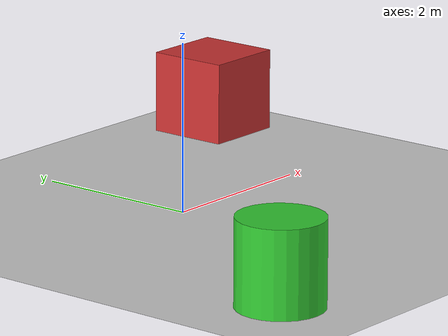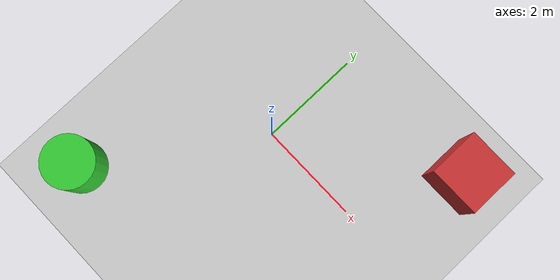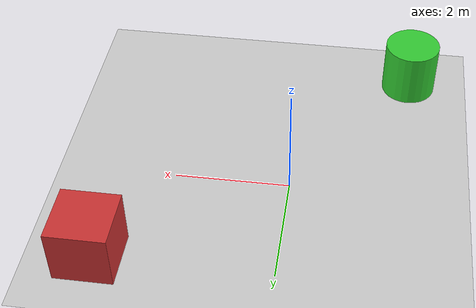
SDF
<sdf version="1.7">
  <world name="simple_world">
    <!-- 기본 플러그인들 -->
    <plugin filename="gz-sim-physics-system" name="gz::sim::systems::Physics"></plugin>
    <plugin filename="gz-sim-sensors-system" name="gz::sim::systems::Sensors">
      <render_engine>ogre2</render_engine>
    </plugin>
    <plugin filename="gz-sim-user-commands-system" name="gz::sim::systems::UserCommands"></plugin>
    <plugin filename="gz-sim-scene-broadcaster-system" name="gz::sim::systems::SceneBroadcaster"></plugin>
    <plugin filename="gz-sim-imu-system" name="gz::sim::systems::Imu"></plugin>

    <!-- 장면 설정 -->
    <scene>
      <ambient>1 1 1</ambient>
      <background>0.8 0.8 0.8</background>
      <grid>true</grid>
    </scene>

    <!-- 바닥 -->
    <include>
      <uri>https://fuel.gazebosim.org/1.0/OpenRobotics/models/Ground Plane</uri>
    </include>

    <!-- 조명 -->
    <light type="directional" name="sun">
      <cast_shadows>true</cast_shadows>
      <pose>0 0 10 0 0 0</pose>
      <diffuse>1 1 1 1</diffuse>
      <specular>0.2 0.2 0.2 1</specular>
      <attenuation>
        <range>1000</range>
        <constant>0.09</constant>
        <linear>0.001</linear>
        <quadratic>0.001</quadratic>
      </attenuation>
      <direction>-0.5 0.1 -0.9</direction>
    </light>

    <!-- 간단한 장애물들 -->
    <model name="box_obstacle">
      <pose>3 2 0.5 0 0 0</pose>
      <static>true</static>
      <link name="link">
        <visual name="visual">
          <geometry>
            <box>
              <size>1 1 1</size>
            </box>
          </geometry>
          <material>
            <ambient>0.8 0.2 0.2 1</ambient>
            <diffuse>0.8 0.2 0.2 1</diffuse>
          </material>
        </visual>
        <collision name="collision">
          <geometry>
            <box>
              <size>1 1 1</size>
            </box>
          </geometry>
        </collision>
      </link>
    </model>

    <model name="cylinder_obstacle">
      <pose>-2 -3 0.5 0 0 0</pose>
      <static>true</static>
      <link name="link">
        <visual name="visual">
          <geometry>
            <cylinder>
              <radius>0.5</radius>
              <length>1</length>
            </cylinder>
          </geometry>
          <material>
            <ambient>0.2 0.8 0.2 1</ambient>
            <diffuse>0.2 0.8 0.2 1</diffuse>
          </material>
        </visual>
        <collision name="collision">
          <geometry>
            <cylinder>
              <radius>0.5</radius>
              <length>1</length>
            </cylinder>
          </geometry>
        </collision>
      </link>
    </model>

  </world>
</sdf>
